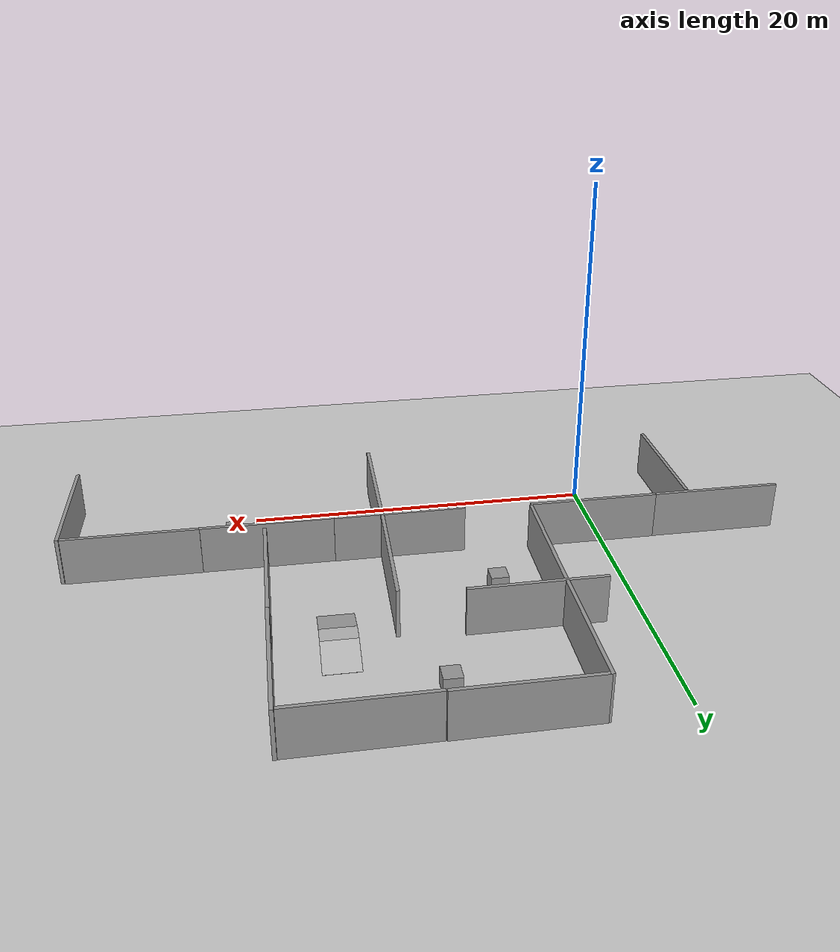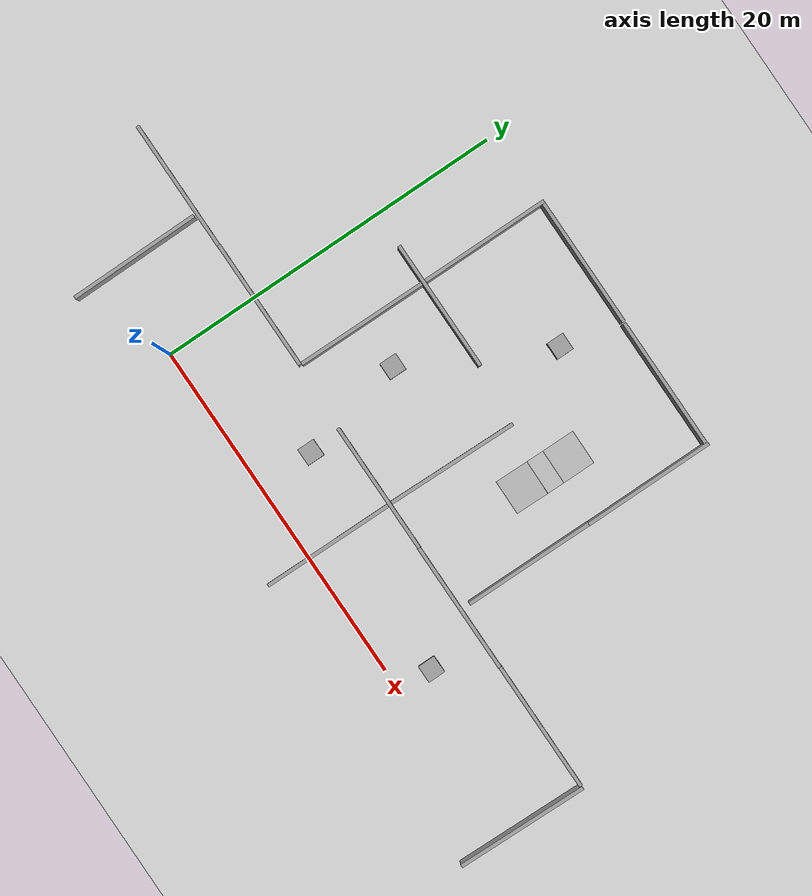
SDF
<sdf version="1.7">
 <world name="default">
  <model name="ground_plane">
   <static>1</static>
   <link name="link">
    <collision name="collision">
     <geometry><plane><normal>0 0 1</normal><size>100 100</size></plane></geometry>
     <surface><friction><ode><mu>100</mu><mu2>50</mu2></ode></friction></surface>
    </collision>
    <visual name="visual">
     <cast_shadows>0</cast_shadows>
     <geometry><plane><normal>0 0 1</normal><size>100 100</size></plane></geometry>
     <material>
      <script><uri>file://media/materials/scripts/gazebo.material</uri><name>Gazebo/Grey</name></script>
     </material>
    </visual>
   </link>
  </model>
  <model name="grey_wall">
   <static>1</static>
   <link name="link">
    <pose>0 0 1.4 0 -0 0</pose>
    <collision name="collision"><geometry><box><size>7.5 0.2 2.8</size></box></geometry></collision>
    <visual name="visual">
     <cast_shadows>0</cast_shadows>
     <geometry><box><size>7.5 0.2 2.8</size></box></geometry>
     <material>
      <script>
       <uri>model://grey_wall/materials/scripts</uri>
       <uri>model://grey_wall/materials/textures</uri>
       <name>vrc/grey_wall</name>
      </script>
     </material>
    </visual>
   </link>
   <pose>0.576021 5.30516 0 0 -0 0</pose>
  </model>
  <model name="grey_wall_0">
   <static>1</static>
   <link name="link">
    <pose>0 0 1.4 0 -0 0</pose>
    <collision name="collision"><geometry><box><size>7.5 0.2 2.8</size></box></geometry></collision>
    <visual name="visual">
     <cast_shadows>0</cast_shadows>
     <geometry><box><size>7.5 0.2 2.8</size></box></geometry>
     <material>
      <script>
       <uri>model://grey_wall/materials/scripts</uri>
       <uri>model://grey_wall/materials/textures</uri>
       <name>vrc/grey_wall</name>
      </script>
     </material>
    </visual>
   </link>
   <pose>-6.88947 5.28874 0 0 -0 0</pose>
  </model>
  <model name="grey_wall_1">
   <static>1</static>
   <link name="link">
    <pose>0 0 1.4 0 -0 0</pose>
    <collision name="collision"><geometry><box><size>7.5 0.2 2.8</size></box></geometry></collision>
    <visual name="visual">
     <cast_shadows>0</cast_shadows>
     <geometry><box><size>7.5 0.2 2.8</size></box></geometry>
     <material>
      <script>
       <uri>model://grey_wall/materials/scripts</uri>
       <uri>model://grey_wall/materials/textures</uri>
       <name>vrc/grey_wall</name>
      </script>
     </material>
    </visual>
   </link>
   <pose>11.8983 5.08766 0 0 -0 0</pose>
  </model>
  <model name="grey_wall_2">
   <static>1</static>
   <link name="link">
    <pose>0 0 1.4 0 -0 0</pose>
    <collision name="collision"><geometry><box><size>7.5 0.2 2.8</size></box></geometry></collision>
    <visual name="visual">
     <cast_shadows>0</cast_shadows>
     <geometry><box><size>7.5 0.2 2.8</size></box></geometry>
     <material>
      <script>
       <uri>model://grey_wall/materials/scripts</uri>
       <uri>model://grey_wall/materials/textures</uri>
       <name>vrc/grey_wall</name>
      </script>
     </material>
    </visual>
   </link>
   <pose>12.8945 1.25724 0 0 0 -1.57903</pose>
  </model>
  <model name="grey_wall_6">
   <static>1</static>
   <link name="link">
    <pose>0 0 1.4 0 -0 0</pose>
    <collision name="collision"><geometry><box><size>7.5 0.2 2.8</size></box></geometry></collision>
    <visual name="visual">
     <cast_shadows>0</cast_shadows>
     <geometry><box><size>7.5 0.2 2.8</size></box></geometry>
     <material>
      <script>
       <uri>model://grey_wall/materials/scripts</uri>
       <uri>model://grey_wall/materials/textures</uri>
       <name>vrc/grey_wall</name>
      </script>
     </material>
    </visual>
   </link>
   <pose>4.36648 9.14808 0 0 -0 1.56331</pose>
  </model>
  <model name="grey_wall_7">
   <static>1</static>
   <link name="link">
    <pose>0 0 1.4 0 -0 0</pose>
    <collision name="collision"><geometry><box><size>7.5 0.2 2.8</size></box></geometry></collision>
    <visual name="visual">
     <cast_shadows>0</cast_shadows>
     <geometry><box><size>7.5 0.2 2.8</size></box></geometry>
     <material>
      <script>
       <uri>model://grey_wall/materials/scripts</uri>
       <uri>model://grey_wall/materials/textures</uri>
       <name>vrc/grey_wall</name>
      </script>
     </material>
    </visual>
   </link>
   <pose>-5.13215 1.35158 0 0 0 -1.56467</pose>
  </model>
  <model name="grey_wall_8">
   <static>1</static>
   <link name="link">
    <pose>0 0 1.4 0 -0 0</pose>
    <collision name="collision"><geometry><box><size>7.5 0.2 2.8</size></box></geometry></collision>
    <visual name="visual">
     <cast_shadows>0</cast_shadows>
     <geometry><box><size>7.5 0.2 2.8</size></box></geometry>
     <material>
      <script>
       <uri>model://grey_wall/materials/scripts</uri>
       <uri>model://grey_wall/materials/textures</uri>
       <name>vrc/grey_wall</name>
      </script>
     </material>
    </visual>
   </link>
   <pose>12.9863 8.95318 -0 0 0 -1.59136</pose>
  </model>
  <model name="grey_wall_9">
   <static>1</static>
   <link name="link">
    <pose>0 0 1.4 0 -0 0</pose>
    <collision name="collision"><geometry><box><size>7.5 0.2 2.8</size></box></geometry></collision>
    <visual name="visual">
     <cast_shadows>0</cast_shadows>
     <geometry><box><size>7.5 0.2 2.8</size></box></geometry>
     <material>
      <script>
       <uri>model://grey_wall/materials/scripts</uri>
       <uri>model://grey_wall/materials/textures</uri>
       <name>vrc/grey_wall</name>
      </script>
     </material>
    </visual>
   </link>
   <pose>5.86395 13.0144 0 0 -0 0</pose>
  </model>
  <model name="grey_wall_16">
   <static>1</static>
   <link name="link">
    <pose>0 0 1.4 0 -0 0</pose>
    <collision name="collision"><geometry><box><size>7.5 0.2 2.8</size></box></geometry></collision>
    <visual name="visual">
     <cast_shadows>0</cast_shadows>
     <geometry><box><size>7.5 0.2 2.8</size></box></geometry>
     <material>
      <script>
       <uri>model://grey_wall/materials/scripts</uri>
       <uri>model://grey_wall/materials/textures</uri>
       <name>vrc/grey_wall</name>
      </script>
     </material>
    </visual>
   </link>
   <pose>4.39951 16.7833 0 0 0 -1.5746</pose>
  </model>
  <model name="grey_wall_17">
   <static>1</static>
   <link name="link">
    <pose>0 0 1.4 0 -0 0</pose>
    <collision name="collision"><geometry><box><size>7.5 0.2 2.8</size></box></geometry></collision>
    <visual name="visual">
     <cast_shadows>0</cast_shadows>
     <geometry><box><size>7.5 0.2 2.8</size></box></geometry>
     <material>
      <script>
       <uri>model://grey_wall/materials/scripts</uri>
       <uri>model://grey_wall/materials/textures</uri>
       <name>vrc/grey_wall</name>
      </script>
     </material>
    </visual>
   </link>
   <pose>8.18387 20.4446 0 0 -0 0</pose>
  </model>
  <model name="grey_wall_18">
   <static>1</static>
   <link name="link">
    <pose>0 0 1.4 0 -0 0</pose>
    <collision name="collision"><geometry><box><size>7.5 0.2 2.8</size></box></geometry></collision>
    <visual name="visual">
     <cast_shadows>0</cast_shadows>
     <geometry><box><size>7.5 0.2 2.8</size></box></geometry>
     <material>
      <script>
       <uri>model://grey_wall/materials/scripts</uri>
       <uri>model://grey_wall/materials/textures</uri>
       <name>vrc/grey_wall</name>
      </script>
     </material>
    </visual>
   </link>
   <pose>15.7329 20.4148 0 0 -0 0</pose>
  </model>
  <model name="grey_wall_19">
   <static>1</static>
   <link name="link">
    <pose>0 0 1.4 0 -0 0</pose>
    <collision name="collision"><geometry><box><size>7.5 0.2 2.8</size></box></geometry></collision>
    <visual name="visual">
     <cast_shadows>0</cast_shadows>
     <geometry><box><size>7.5 0.2 2.8</size></box></geometry>
     <material>
      <script>
       <uri>model://grey_wall/materials/scripts</uri>
       <uri>model://grey_wall/materials/textures</uri>
       <name>vrc/grey_wall</name>
      </script>
     </material>
    </visual>
   </link>
   <pose>19.5878 16.7852 0 0 -0 1.56817</pose>
  </model>
  <model name="grey_wall_20">
   <static>1</static>
   <link name="link">
    <pose>0 0 1.4 0 -0 0</pose>
    <collision name="collision"><geometry><box><size>7.5 0.2 2.8</size></box></geometry></collision>
    <visual name="visual">
     <cast_shadows>0</cast_shadows>
     <geometry><box><size>7.5 0.2 2.8</size></box></geometry>
     <material>
      <script>
       <uri>model://grey_wall/materials/scripts</uri>
       <uri>model://grey_wall/materials/textures</uri>
       <name>vrc/grey_wall</name>
      </script>
     </material>
    </visual>
   </link>
   <pose>19.5369 9.35748 0 0 0 -1.57764</pose>
  </model>
  <model name="grey_wall_21">
   <static>1</static>
   <link name="link">
    <pose>0 0 1.4 0 -0 0</pose>
    <collision name="collision"><geometry><box><size>7.5 0.2 2.8</size></box></geometry></collision>
    <visual name="visual">
     <cast_shadows>0</cast_shadows>
     <geometry><box><size>7.5 0.2 2.8</size></box></geometry>
     <material>
      <script>
       <uri>model://grey_wall/materials/scripts</uri>
       <uri>model://grey_wall/materials/textures</uri>
       <name>vrc/grey_wall</name>
      </script>
     </material>
    </visual>
   </link>
   <pose>19.3742 5.06733 0 0 -0 0</pose>
  </model>
  <model name="grey_wall_25">
   <static>1</static>
   <link name="link">
    <pose>0 0 1.4 0 -0 0</pose>
    <collision name="collision"><geometry><box><size>7.5 0.2 2.8</size></box></geometry></collision>
    <visual name="visual">
     <cast_shadows>0</cast_shadows>
     <geometry><box><size>7.5 0.2 2.8</size></box></geometry>
     <material>
      <script>
       <uri>model://grey_wall/materials/scripts</uri>
       <uri>model://grey_wall/materials/textures</uri>
       <name>vrc/grey_wall</name>
      </script>
     </material>
    </visual>
   </link>
   <pose>26.8227 5.08278 0 0 -0 0</pose>
  </model>
  <model name="grey_wall_27">
   <static>1</static>
   <link name="link">
    <pose>0 0 1.4 0 -0 0</pose>
    <collision name="collision"><geometry><box><size>7.5 0.2 2.8</size></box></geometry></collision>
    <visual name="visual">
     <cast_shadows>0</cast_shadows>
     <geometry><box><size>7.5 0.2 2.8</size></box></geometry>
     <material>
      <script>
       <uri>model://grey_wall/materials/scripts</uri>
       <uri>model://grey_wall/materials/textures</uri>
       <name>vrc/grey_wall</name>
      </script>
     </material>
    </visual>
   </link>
   <pose>30.6146 1.37442 0 0 0 -1.59508</pose>
  </model>
  <model name="slope_clone">
   <static>1</static>
   <pose>16.1488 16.1639 0 0 0 -1.58105</pose>
   <link name="slope_up">
    <pose>1.95534 0 0.29552 0 -0.3 0</pose>
    <collision name="collision"><geometry><box><size>2 2 0.01</size></box></geometry></collision>
    <visual name="visual"><geometry><box><size>2 2 0.01</size></box></geometry></visual>
   </link>
   <link name="slope_zero">
    <pose>3.41067 0 0.59104 0 -0 0</pose>
    <collision name="collision"><geometry><box><size>1 2 0.01</size></box></geometry></collision>
    <visual name="visual"><geometry><box><size>1 2 0.01</size></box></geometry></visual>
   </link>
   <link name="slope_down">
    <pose>4.86601 0 0.29552 0 0.3 0</pose>
    <collision name="collision"><geometry><box><size>2 2 0.01</size></box></geometry></collision>
    <visual name="visual"><geometry><box><size>2 2 0.01</size></box></geometry></visual>
   </link>
  </model>
  <model name="unit_box_2">
   <pose>11.1011 17.0797 0.499995 -1e-05 -0 0</pose>
   <link name="link">
    <inertial>
     <mass>1</mass>
     <inertia>
      <ixx>0.166667</ixx>
      <ixy>0</ixy>
      <ixz>0</ixz>
      <iyy>0.166667</iyy>
      <iyz>0</iyz>
      <izz>0.166667</izz>
     </inertia>
    </inertial>
    <collision name="collision"><geometry><box><size>1 1 1</size></box></geometry></collision>
    <visual name="visual">
     <geometry><box><size>1 1 1</size></box></geometry>
     <material>
      <script><name>Gazebo/Grey</name><uri>file://media/materials/scripts/gazebo.material</uri></script>
     </material>
    </visual>
   </link>
  </model>
  <model name="unit_box_3">
   <pose>7.07102 9.26278 0.499995 0 1e-05 0</pose>
   <link name="link">
    <inertial>
     <mass>1</mass>
     <inertia>
      <ixx>0.166667</ixx>
      <ixy>0</ixy>
      <ixz>0</ixz>
      <iyy>0.166667</iyy>
      <iyz>0</iyz>
      <izz>0.166667</izz>
     </inertia>
    </inertial>
    <collision name="collision"><geometry><box><size>1 1 1</size></box></geometry></collision>
    <visual name="visual">
     <geometry><box><size>1 1 1</size></box></geometry>
     <material>
      <script><name>Gazebo/Grey</name><uri>file://media/materials/scripts/gazebo.material</uri></script>
     </material>
    </visual>
   </link>
  </model>
  <model name="unit_box_4">
   <pose>8.36827 3.20482 0.499995 -1e-05 -0 0</pose>
   <link name="link">
    <inertial>
     <mass>1</mass>
     <inertia>
      <ixx>0.166667</ixx>
      <ixy>0</ixy>
      <ixz>0</ixz>
      <iyy>0.166667</iyy>
      <iyz>0</iyz>
      <izz>0.166667</izz>
     </inertia>
    </inertial>
    <collision name="collision"><geometry><box><size>1 1 1</size></box></geometry></collision>
    <visual name="visual">
     <geometry><box><size>1 1 1</size></box></geometry>
     <material>
      <script><name>Gazebo/Grey</name><uri>file://media/materials/scripts/gazebo.material</uri></script>
     </material>
    </visual>
   </link>
  </model>
  <model name="unit_box_9">
   <pose>21.2736 2.05131 0.499995 0 1e-05 0</pose>
   <link name="link">
    <inertial>
     <mass>1</mass>
     <inertia>
      <ixx>0.166667</ixx>
      <ixy>0</ixy>
      <ixz>0</ixz>
      <iyy>0.166667</iyy>
      <iyz>0</iyz>
      <izz>0.166667</izz>
     </inertia>
    </inertial>
    <collision name="collision"><geometry><box><size>1 1 1</size></box></geometry></collision>
    <visual name="visual">
     <geometry><box><size>1 1 1</size></box></geometry>
     <material>
      <script><name>Gazebo/Grey</name><uri>file://media/materials/scripts/gazebo.material</uri></script>
     </material>
    </visual>
   </link>
  </model>
 </world>
</sdf>
